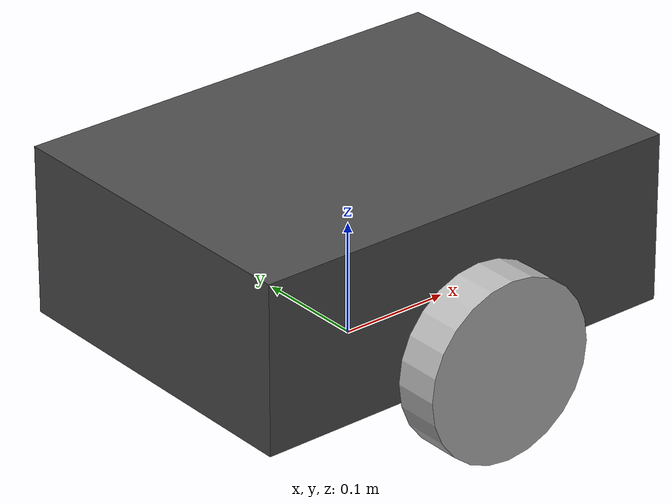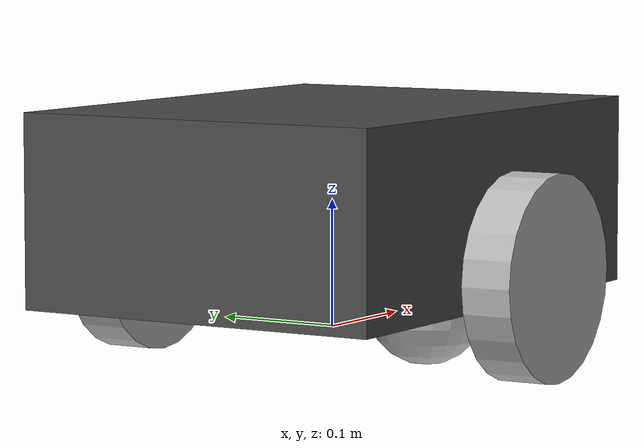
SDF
<?xml version="1.0"?>
<sdf version="1.8">
  <model name="diff_drive_robot">
    <pose>0 0 0.1 0 0 0</pose>

    <link name="chassis">
      <pose>0 0 0 0 0 0</pose>
      <inertial>
        <mass>8.0</mass>
        <inertia>
          <ixx>0.05</ixx><iyy>0.08</iyy><izz>0.10</izz>
          <ixy>0</ixy><ixz>0</ixz><iyz>0</iyz>
        </inertia>
      </inertial>
      <visual name="chassis_visual">
        <geometry><box><size>0.4 0.3 0.15</size></box></geometry>
        <material><ambient>0.3 0.3 0.3 1</ambient><diffuse>0.3 0.3 0.3 1</diffuse></material>
      </visual>
      <collision name="chassis_collision">
        <geometry><box><size>0.4 0.3 0.15</size></box></geometry>
      </collision>
    </link>

    <link name="left_wheel">
      <pose>0 0.18 -0.05 -1.5708 0 0</pose>
      <inertial>
        <mass>0.5</mass>
        <inertia><ixx>0.001</ixx><iyy>0.001</iyy><izz>0.001</izz><ixy>0</ixy><ixz>0</ixz><iyz>0</iyz></inertia>
      </inertial>
      <visual name="left_wheel_visual">
        <geometry><cylinder><radius>0.08</radius><length>0.04</length></cylinder></geometry>
      </visual>
      <collision name="left_wheel_collision">
        <geometry><cylinder><radius>0.08</radius><length>0.04</length></cylinder></geometry>
      </collision>
    </link>
    <joint name="left_wheel_joint" type="revolute">
      <parent>chassis</parent>
      <child>left_wheel</child>
      <axis><xyz>0 0 1</xyz><limit><lower>-1e16</lower><upper>1e16</upper></limit></axis>
    </joint>

    <link name="right_wheel">
      <pose>0 -0.18 -0.05 -1.5708 0 0</pose>
      <inertial>
        <mass>0.5</mass>
        <inertia><ixx>0.001</ixx><iyy>0.001</iyy><izz>0.001</izz><ixy>0</ixy><ixz>0</ixz><iyz>0</iyz></inertia>
      </inertial>
      <visual name="right_wheel_visual">
        <geometry><cylinder><radius>0.08</radius><length>0.04</length></cylinder></geometry>
      </visual>
      <collision name="right_wheel_collision">
        <geometry><cylinder><radius>0.08</radius><length>0.04</length></cylinder></geometry>
      </collision>
    </link>
    <joint name="right_wheel_joint" type="revolute">
      <parent>chassis</parent>
      <child>right_wheel</child>
      <axis><xyz>0 0 1</xyz><limit><lower>-1e16</lower><upper>1e16</upper></limit></axis>
    </joint>

    <link name="caster">
      <pose>0.15 0 -0.1 0 0 0</pose>
      <inertial>
        <mass>0.2</mass>
        <inertia><ixx>0.0001</ixx><iyy>0.0001</iyy><izz>0.0001</izz><ixy>0</ixy><ixz>0</ixz><iyz>0</iyz></inertia>
      </inertial>
      <visual name="caster_visual"><geometry><sphere><radius>0.05</radius></sphere></geometry></visual>
      <collision name="caster_collision"><geometry><sphere><radius>0.05</radius></sphere></geometry></collision>
    </link>
    <joint name="caster_joint" type="fixed">
      <parent>chassis</parent>
      <child>caster</child>
    </joint>

    <plugin filename="gz-sim-diff-drive-system" name="gz::sim::systems::DiffDrive">
      <left_joint>left_wheel_joint</left_joint>
      <right_joint>right_wheel_joint</right_joint>
      <wheel_separation>0.36</wheel_separation>
      <wheel_radius>0.08</wheel_radius>
      <odom_publish_frequency>20</odom_publish_frequency>
      <topic>cmd_vel</topic>
      <odom_topic>odometry</odom_topic>
    </plugin>

  </model>
</sdf>
